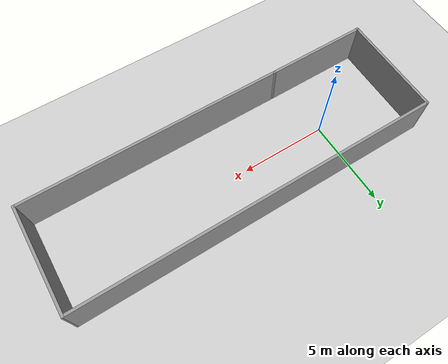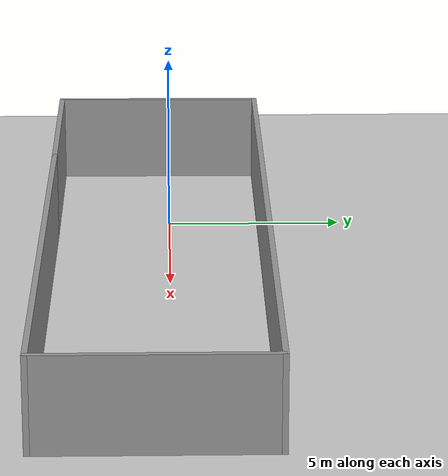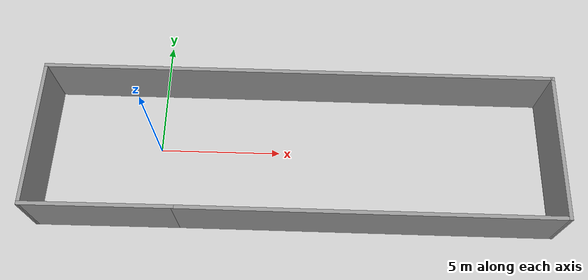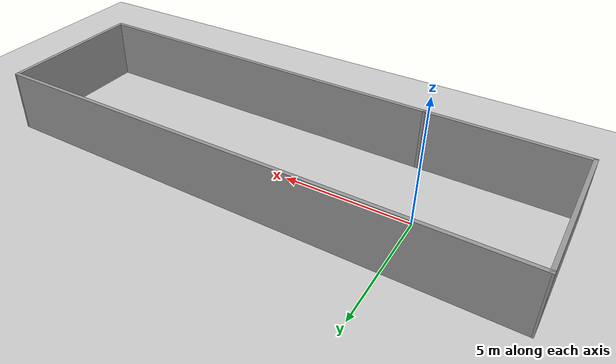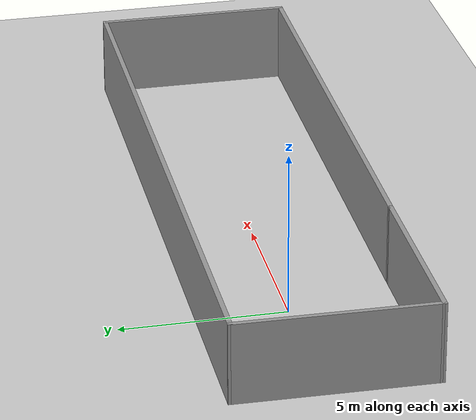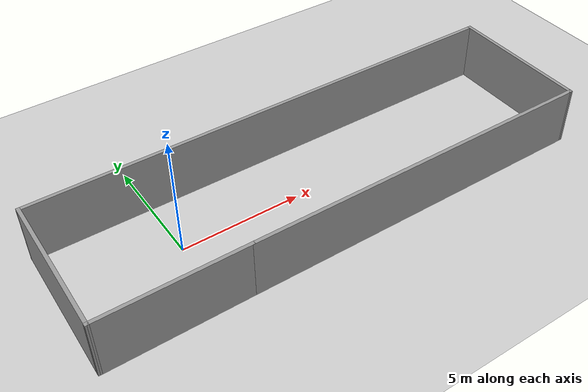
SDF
<sdf version="1.7">
 <world name="default">
  <plugin name="gazebo_ros" filename="libgazebo_ros_api_plugin.so"><robotNamespace>/</robotNamespace></plugin>
  <light name="sun" type="directional">
   <pose>0 0 10 0 -0 0</pose>
   <diffuse>0.8 0.8 0.8 1</diffuse>
   <specular>0.2 0.2 0.2 1</specular>
   <attenuation>
    <range>1000</range>
    <constant>0.9</constant>
    <linear>0.01</linear>
    <quadratic>0.001</quadratic>
   </attenuation>
   <direction>-0.5 0.1 -0.9</direction>
   <spot><inner_angle>0</inner_angle><outer_angle>0</outer_angle><falloff>0</falloff></spot>
  </light>
  <model name="ground_plane">
   <static>1</static>
   <link name="link">
    <collision name="collision">
     <geometry><plane><normal>0 0 1</normal><size>100 100</size></plane></geometry>
     <surface><friction><ode><mu>100</mu><mu2>50</mu2></ode></friction></surface>
    </collision>
    <visual name="visual">
     <cast_shadows>0</cast_shadows>
     <geometry><plane><normal>0 0 1</normal><size>100 100</size></plane></geometry>
     <material>
      <script><uri>file://media/materials/scripts/gazebo.material</uri><name>Gazebo/Grey</name></script>
     </material>
    </visual>
   </link>
  </model>
  <gravity>0 0 -9.8</gravity>
  <magnetic_field>6e-06 2.3e-05 -4.2e-05</magnetic_field>
  <atmosphere type="adiabatic"/>
  <physics type="ode">
   <max_step_size>0.001</max_step_size>
   <real_time_factor>1</real_time_factor>
   <real_time_update_rate>1000</real_time_update_rate>
  </physics>
  <scene><ambient>0.4 0.4 0.4 1</ambient><background>0.7 0.7 0.7 1</background><shadows>1</shadows></scene>
  <spherical_coordinates>
   <surface_model>EARTH_WGS84</surface_model>
   <latitude_deg>0</latitude_deg>
   <longitude_deg>0</longitude_deg>
   <elevation>0</elevation>
   <heading_deg>0</heading_deg>
  </spherical_coordinates>
  <model name="kb_1">
   <pose>5.70124 -0.342008 0 0 -0 0</pose>
   <link name="Wall_0">
    <collision name="Wall_0_Collision">
     <geometry><box><size>6 0.15 2.5</size></box></geometry>
     <pose>0 0 1.25 0 -0 0</pose>
    </collision>
    <visual name="Wall_0_Visual">
     <pose>0 0 1.25 0 -0 0</pose>
     <geometry><box><size>6 0.15 2.5</size></box></geometry>
     <material>
      <script><uri>file://media/materials/scripts/gazebo.material</uri><name>Gazebo/Grey</name></script>
      <ambient>1 1 1 1</ambient>
     </material>
     <meta><layer>0</layer></meta>
    </visual>
    <pose>-7.52271 -2.95387 0 0 -0 3.14159</pose>
   </link>
   <link name="Wall_1">
    <collision name="Wall_1_Collision">
     <geometry><box><size>6.12801 0.15 2.5</size></box></geometry>
     <pose>0 0 1.25 0 -0 0</pose>
    </collision>
    <visual name="Wall_1_Visual">
     <pose>0 0 1.25 0 -0 0</pose>
     <geometry><box><size>6.12801 0.15 2.5</size></box></geometry>
     <material>
      <script><uri>file://media/materials/scripts/gazebo.material</uri><name>Gazebo/Grey</name></script>
      <ambient>1 1 1 1</ambient>
     </material>
     <meta><layer>0</layer></meta>
    </visual>
    <pose>-10.4025 0.034791 0 0 -0 1.55566</pose>
   </link>
   <link name="Wall_2">
    <collision name="Wall_2_Collision">
     <geometry><box><size>20.9561 0.15 2.5</size></box></geometry>
     <pose>0 0 1.25 0 -0 0</pose>
    </collision>
    <visual name="Wall_2_Visual">
     <pose>0 0 1.25 0 -0 0</pose>
     <geometry><box><size>20.9561 0.15 2.5</size></box></geometry>
     <material>
      <script><uri>file://media/materials/scripts/gazebo.material</uri><name>Gazebo/Grey</name></script>
      <ambient>1 1 1 1</ambient>
     </material>
     <meta><layer>0</layer></meta>
    </visual>
    <pose>0.045557 2.97069 0 0 -0 -0.005072</pose>
   </link>
   <link name="Wall_3">
    <collision name="Wall_3_Collision">
     <geometry><box><size>6.09218 0.15 2.5</size></box></geometry>
     <pose>0 0 1.25 0 -0 0</pose>
    </collision>
    <visual name="Wall_3_Visual">
     <pose>0 0 1.25 0 -0 0</pose>
     <geometry><box><size>6.09218 0.15 2.5</size></box></geometry>
     <material>
      <script><uri>file://media/materials/scripts/gazebo.material</uri><name>Gazebo/Grey</name></script>
      <ambient>1 1 1 1</ambient>
     </material>
     <meta><layer>0</layer></meta>
    </visual>
    <pose>10.4383 -0.053156 0 0 -0 -1.57418</pose>
   </link>
   <link name="Wall_4">
    <collision name="Wall_4_Collision">
     <geometry><box><size>15.206 0.15 2.5</size></box></geometry>
     <pose>0 0 1.25 0 -0 0</pose>
    </collision>
    <visual name="Wall_4_Visual">
     <pose>0 0 1.25 0 -0 0</pose>
     <geometry><box><size>15.206 0.15 2.5</size></box></geometry>
     <material>
      <script><uri>file://media/materials/scripts/gazebo.material</uri><name>Gazebo/Grey</name></script>
      <ambient>1 1 1 1</ambient>
     </material>
     <meta><layer>0</layer></meta>
    </visual>
    <pose>2.90044 -2.98905 0 0 -0 3.13692</pose>
   </link>
   <static>1</static>
  </model>
 </world>
</sdf>
